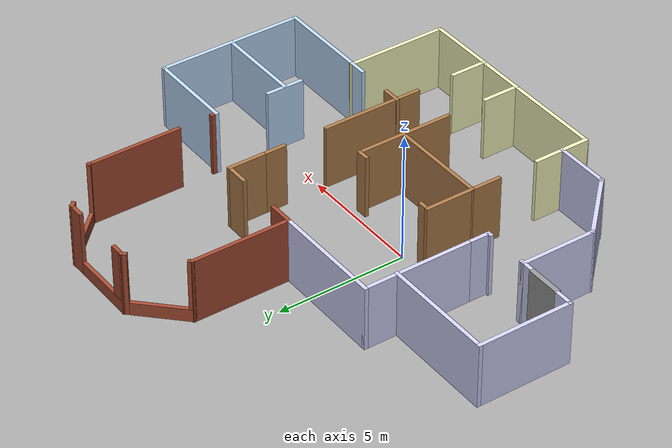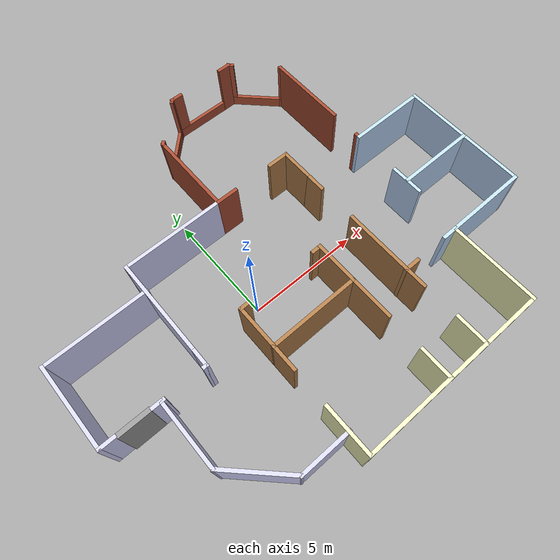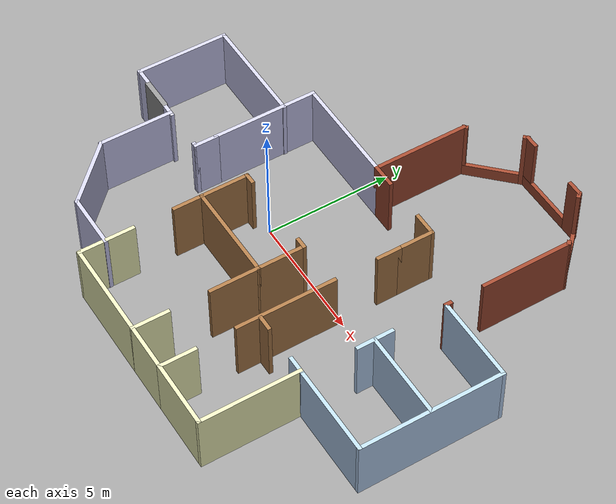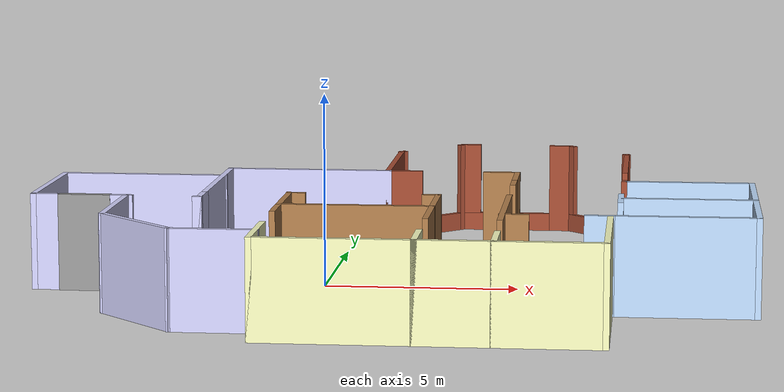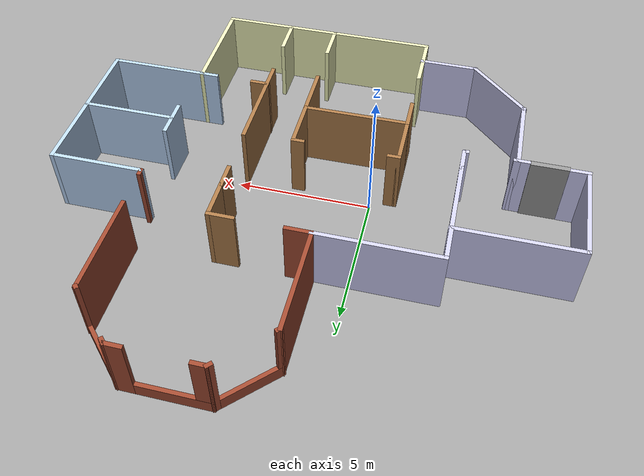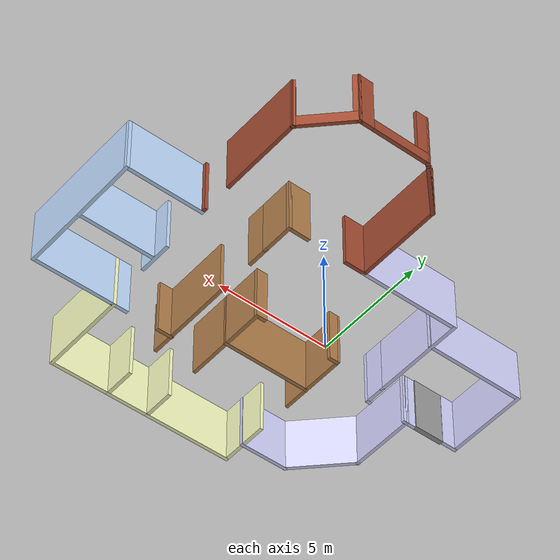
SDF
<?xml version='1.0'?>
<sdf version='1.6'>
  <model name='largehouse'>
    <pose frame=''>1.81017 1.07126 0 0 -0 0</pose>
    <link name='Door_1'>
      <collision name='Door_1_Collision'>
        <geometry>
          <box>
            <size>1.364 0.2 2.5</size>
          </box>
        </geometry>
        <pose frame=''>0 0 1.25 0 -0 0</pose>
      </collision>
      <visual name='Door_1_Visual'>
        <pose frame=''>0 0 1.25 0 -0 0</pose>
        <geometry>
          <box>
            <size>1.364 0.2 2.5</size>
          </box>
        </geometry>
        <material>
          <script>
            <uri>file://media/materials/scripts/gazebo.material</uri>
            <name>Gazebo/Grey</name>
          </script>
        </material>
      </visual>
      <pose frame=''>-7.8761 -2.2287 0 0 -0 0</pose>
    </link>
    <link name='Wall_0'>
      <collision name='Wall_0_Collision'>
        <geometry>
          <box>
            <size>4.00005 0.15 2.5</size>
          </box>
        </geometry>
        <pose frame=''>0 0 1.25 0 -0 0</pose>
      </collision>
      <visual name='Wall_0_Visual'>
        <pose frame=''>0 0 1.25 0 -0 0</pose>
        <geometry>
          <box>
            <size>4.00005 0.15 2.5</size>
          </box>
        </geometry>
        <material>
          <script>
            <uri>file://media/materials/scripts/gazebo.material</uri>
            <name>Gazebo/Wood</name>
          </script>
          <ambient>1 1 1 1</ambient>
        </material>
        <meta>
          <layer>0</layer>
        </meta>
      </visual>
      <pose frame=''>-0.765166 -3.26121 0 0 -0 0.005224</pose>
    </link>
    <link name='Wall_1'>
      <collision name='Wall_1_Collision'>
        <geometry>
          <box>
            <size>1.97989 0.15 2.5</size>
          </box>
        </geometry>
        <pose frame=''>0 0 1.25 0 -0 0</pose>
      </collision>
      <visual name='Wall_1_Visual'>
        <pose frame=''>0 0 1.25 0 -0 0</pose>
        <geometry>
          <box>
            <size>1.97989 0.15 2.5</size>
          </box>
        </geometry>
        <material>
          <script>
            <uri>file://media/materials/scripts/gazebo.material</uri>
            <name>Gazebo/Wood</name>
          </script>
          <ambient>1 1 1 1</ambient>
        </material>
        <meta>
          <layer>0</layer>
        </meta>
      </visual>
      <pose frame=''>1.15983 -2.33621 0 0 -0 1.5708</pose>
    </link>
    <link name='Wall_102'>
      <pose frame=''>0.267282 7.25959 0 0 0 -2.35619</pose>
      <visual name='Wall_102_Visual_0'>
        <pose frame=''>-1.11851 0 1.25 0 -0 0</pose>
        <geometry>
          <box>
            <size>0.262969 0.15 2.5</size>
          </box>
        </geometry>
        <material>
          <script>
            <uri>file://media/materials/scripts/gazebo.material</uri>
            <name>Gazebo/Bricks</name>
          </script>
          <ambient>1 1 1 1</ambient>
        </material>
        <meta>
          <layer>0</layer>
        </meta>
      </visual>
      <collision name='Wall_102_Collision_0'>
        <geometry>
          <box>
            <size>0.262969 0.15 2.5</size>
          </box>
        </geometry>
        <pose frame=''>-1.11851 0 1.25 0 -0 0</pose>
      </collision>
      <visual name='Wall_102_Visual_1'>
        <pose frame=''>0.131485 0 0.25 0 -0 0</pose>
        <geometry>
          <box>
            <size>2.23703 0.15 0.5</size>
          </box>
        </geometry>
        <material>
          <script>
            <uri>file://media/materials/scripts/gazebo.material</uri>
            <name>Gazebo/Bricks</name>
          </script>
          <ambient>1 1 1 1</ambient>
        </material>
        <meta>
          <layer>0</layer>
        </meta>
      </visual>
      <collision name='Wall_102_Collision_1'>
        <geometry>
          <box>
            <size>2.23703 0.15 0.5</size>
          </box>
        </geometry>
        <pose frame=''>0.131485 0 0.25 0 -0 0</pose>
      </collision>
      <visual name='Wall_102_Visual_2'>
        <pose frame=''>1.13149 0 1.5 0 -0 0</pose>
        <geometry>
          <box>
            <size>0.237031 0.15 2</size>
          </box>
        </geometry>
        <material>
          <script>
            <uri>file://media/materials/scripts/gazebo.material</uri>
            <name>Gazebo/Bricks</name>
          </script>
          <ambient>1 1 1 1</ambient>
        </material>
        <meta>
          <layer>0</layer>
        </meta>
      </visual>
      <collision name='Wall_102_Collision_2'>
        <geometry>
          <box>
            <size>0.237031 0.15 2</size>
          </box>
        </geometry>
        <pose frame=''>1.13149 0 1.5 0 -0 0</pose>
      </collision>
    </link>
    <link name='Wall_103'>
      <collision name='Wall_103_Collision'>
        <geometry>
          <box>
            <size>3.75 0.15 2.5</size>
          </box>
        </geometry>
        <pose frame=''>0 0 1.25 0 -0 0</pose>
      </collision>
      <visual name='Wall_103_Visual'>
        <pose frame=''>0 0 1.25 0 -0 0</pose>
        <geometry>
          <box>
            <size>3.75 0.15 2.5</size>
          </box>
        </geometry>
        <material>
          <script>
            <uri>file://media/materials/scripts/gazebo.material</uri>
            <name>Gazebo/Bricks</name>
          </script>
          <ambient>1 1 1 1</ambient>
        </material>
        <meta>
          <layer>0</layer>
        </meta>
      </visual>
      <pose frame=''>-0.563568 4.62874 0 0 0 -1.5708</pose>
    </link>
    <link name='Wall_106'>
      <collision name='Wall_106_Collision'>
        <geometry>
          <box>
            <size>4.5 0.15 2.5</size>
          </box>
        </geometry>
        <pose frame=''>0 0 1.25 0 -0 0</pose>
      </collision>
      <visual name='Wall_106_Visual'>
        <pose frame=''>0 0 1.25 0 -0 0</pose>
        <geometry>
          <box>
            <size>4.5 0.15 2.5</size>
          </box>
        </geometry>
        <material>
          <script>
            <uri>file://media/materials/scripts/gazebo.material</uri>
            <name>Gazebo/Grey</name>
          </script>
          <ambient>0.835294 0.835294 1 1</ambient>
        </material>
        <meta>
          <layer>0</layer>
        </meta>
      </visual>
      <pose frame=''>-2.71517 2.67874 0 0 -0 0</pose>
    </link>
    <link name='Wall_107'>
      <collision name='Wall_107_Collision'>
        <geometry>
          <box>
            <size>1 0.15 2.5</size>
          </box>
        </geometry>
        <pose frame=''>0 0 1.25 0 -0 0</pose>
      </collision>
      <visual name='Wall_107_Visual'>
        <pose frame=''>0 0 1.25 0 -0 0</pose>
        <geometry>
          <box>
            <size>1 0.15 2.5</size>
          </box>
        </geometry>
        <material>
          <script>
            <uri>file://media/materials/scripts/gazebo.material</uri>
            <name>Gazebo/Bricks</name>
          </script>
          <ambient>0.670588 0.678431 1 1</ambient>
        </material>
        <meta>
          <layer>0</layer>
        </meta>
      </visual>
      <pose frame=''>-0.115166 2.67874 0 0 -0 0</pose>
    </link>
    <link name='Wall_109'>
      <collision name='Wall_109_Collision'>
        <geometry>
          <box>
            <size>1 0.15 2.5</size>
          </box>
        </geometry>
        <pose frame=''>0 0 1.25 0 -0 0</pose>
      </collision>
      <visual name='Wall_109_Visual'>
        <pose frame=''>0 0 1.25 0 -0 0</pose>
        <geometry>
          <box>
            <size>1 0.15 2.5</size>
          </box>
        </geometry>
        <material>
          <script>
            <uri>file://media/materials/scripts/gazebo.material</uri>
            <name>Gazebo/Wood</name>
          </script>
          <ambient>1 1 1 1</ambient>
        </material>
        <meta>
          <layer>0</layer>
        </meta>
      </visual>
      <pose frame=''>2.53483 2.67874 0 0 -0 3.14159</pose>
    </link>
    <link name='Wall_15'>
      <collision name='Wall_15_Collision'>
        <geometry>
          <box>
            <size>2 0.15 2.5</size>
          </box>
        </geometry>
        <pose frame=''>0 0 1.25 0 -0 0</pose>
      </collision>
      <visual name='Wall_15_Visual'>
        <pose frame=''>0 0 1.25 0 -0 0</pose>
        <geometry>
          <box>
            <size>2 0.15 2.5</size>
          </box>
        </geometry>
        <material>
          <script>
            <uri>file://media/materials/scripts/gazebo.material</uri>
            <name>Gazebo/Wood</name>
          </script>
          <ambient>1 1 1 1</ambient>
        </material>
        <meta>
          <layer>0</layer>
        </meta>
      </visual>
      <pose frame=''>1.15983 -4.19626 0 0 0 -1.5708</pose>
    </link>
    <link name='Wall_18'>
      <collision name='Wall_18_Collision'>
        <geometry>
          <box>
            <size>4 0.15 2.5</size>
          </box>
        </geometry>
        <pose frame=''>0 0 1.25 0 -0 0</pose>
      </collision>
      <visual name='Wall_18_Visual'>
        <pose frame=''>0 0 1.25 0 -0 0</pose>
        <geometry>
          <box>
            <size>4 0.15 2.5</size>
          </box>
        </geometry>
        <material>
          <script>
            <uri>file://media/materials/scripts/gazebo.material</uri>
            <name>Gazebo/Grey</name>
          </script>
          <ambient>0.988235 1 0.760784 1</ambient>
        </material>
        <meta>
          <layer>0</layer>
        </meta>
      </visual>
      <pose frame=''>-0.765166 -8.12126 0 0 -0 0</pose>
    </link>
    <link name='Wall_19'>
      <collision name='Wall_19_Collision'>
        <geometry>
          <box>
            <size>1.5 0.15 2.5</size>
          </box>
        </geometry>
        <pose frame=''>0 0 1.25 0 -0 0</pose>
      </collision>
      <visual name='Wall_19_Visual'>
        <pose frame=''>0 0 1.25 0 -0 0</pose>
        <geometry>
          <box>
            <size>1.5 0.15 2.5</size>
          </box>
        </geometry>
        <material>
          <script>
            <uri>file://media/materials/scripts/gazebo.material</uri>
            <name>Gazebo/Grey</name>
          </script>
          <ambient>0.988235 1 0.760784 1</ambient>
        </material>
        <meta>
          <layer>0</layer>
        </meta>
      </visual>
      <pose frame=''>1.15983 -7.44626 0 0 -0 1.5708</pose>
    </link>
    <link name='Wall_2'>
      <collision name='Wall_2_Collision'>
        <geometry>
          <box>
            <size>0.5 0.15 2.5</size>
          </box>
        </geometry>
        <pose frame=''>0 0 1.25 0 -0 0</pose>
      </collision>
      <visual name='Wall_2_Visual'>
        <pose frame=''>0 0 1.25 0 -0 0</pose>
        <geometry>
          <box>
            <size>0.5 0.15 2.5</size>
          </box>
        </geometry>
        <material>
          <script>
            <uri>file://media/materials/scripts/gazebo.material</uri>
            <name>Gazebo/Wood</name>
          </script>
          <ambient>1 1 1 1</ambient>
        </material>
        <meta>
          <layer>0</layer>
        </meta>
      </visual>
      <pose frame=''>0.984834 -1.42126 0 0 -0 3.14159</pose>
    </link>
    <link name='Wall_21'>
      <collision name='Wall_21_Collision'>
        <geometry>
          <box>
            <size>2 0.15 2.5</size>
          </box>
        </geometry>
        <pose frame=''>0 0 1.25 0 -0 0</pose>
      </collision>
      <visual name='Wall_21_Visual'>
        <pose frame=''>0 0 1.25 0 -0 0</pose>
        <geometry>
          <box>
            <size>2 0.15 2.5</size>
          </box>
        </geometry>
        <material>
          <script>
            <uri>file://media/materials/scripts/gazebo.material</uri>
            <name>Gazebo/Grey</name>
          </script>
          <ambient>0.988235 1 0.760784 1</ambient>
        </material>
        <meta>
          <layer>0</layer>
        </meta>
      </visual>
      <pose frame=''>2.08483 -8.12126 0 0 -0 0</pose>
    </link>
    <link name='Wall_22'>
      <collision name='Wall_22_Collision'>
        <geometry>
          <box>
            <size>1.5 0.15 2.5</size>
          </box>
        </geometry>
        <pose frame=''>0 0 1.25 0 -0 0</pose>
      </collision>
      <visual name='Wall_22_Visual'>
        <pose frame=''>0 0 1.25 0 -0 0</pose>
        <geometry>
          <box>
            <size>1.5 0.15 2.5</size>
          </box>
        </geometry>
        <material>
          <script>
            <uri>file://media/materials/scripts/gazebo.material</uri>
            <name>Gazebo/Grey</name>
          </script>
          <ambient>0.988235 1 0.760784 1</ambient>
        </material>
        <meta>
          <layer>0</layer>
        </meta>
      </visual>
      <pose frame=''>3.00983 -7.44626 0 0 -0 1.5708</pose>
    </link>
    <link name='Wall_24'>
      <collision name='Wall_24_Collision'>
        <geometry>
          <box>
            <size>4 0.15 2.5</size>
          </box>
        </geometry>
        <pose frame=''>0 0 1.25 0 -0 0</pose>
      </collision>
      <visual name='Wall_24_Visual'>
        <pose frame=''>0 0 1.25 0 -0 0</pose>
        <geometry>
          <box>
            <size>4 0.15 2.5</size>
          </box>
        </geometry>
        <material>
          <script>
            <uri>file://media/materials/scripts/gazebo.material</uri>
            <name>Gazebo/Wood</name>
          </script>
          <ambient>1 1 1 1</ambient>
        </material>
        <meta>
          <layer>0</layer>
        </meta>
      </visual>
      <pose frame=''>2.96886 -3.22346 0 0 -0 1.5708</pose>
    </link>
    <link name='Wall_27'>
      <collision name='Wall_27_Collision'>
        <geometry>
          <box>
            <size>2.75 0.15 2.5</size>
          </box>
        </geometry>
        <pose frame=''>0 0 1.25 0 -0 0</pose>
      </collision>
      <visual name='Wall_27_Visual'>
        <pose frame=''>0 0 1.25 0 -0 0</pose>
        <geometry>
          <box>
            <size>2.75 0.15 2.5</size>
          </box>
        </geometry>
        <material>
          <script>
            <uri>file://media/materials/scripts/gazebo.material</uri>
            <name>Gazebo/Grey</name>
          </script>
          <ambient>0.988235 1 0.760784 1</ambient>
        </material>
        <meta>
          <layer>0</layer>
        </meta>
      </visual>
      <pose frame=''>4.30983 -8.12126 0 0 -0 0</pose>
    </link>
    <link name='Wall_28'>
      <collision name='Wall_28_Collision'>
        <geometry>
          <box>
            <size>4.00048 0.15 2.5</size>
          </box>
        </geometry>
        <pose frame=''>0 0 1.25 0 -0 0</pose>
      </collision>
      <visual name='Wall_28_Visual'>
        <pose frame=''>0 0 1.25 0 -0 0</pose>
        <geometry>
          <box>
            <size>4.00048 0.15 2.5</size>
          </box>
        </geometry>
        <material>
          <script>
            <uri>file://media/materials/scripts/gazebo.material</uri>
            <name>Gazebo/Grey</name>
          </script>
          <ambient>0.988235 1 0.760784 1</ambient>
        </material>
        <meta>
          <layer>0</layer>
        </meta>
      </visual>
      <pose frame=''>5.60983 -6.19626 0 0 -0 1.5708</pose>
    </link>
    <link name='Wall_35'>
      <collision name='Wall_35_Collision'>
        <geometry>
          <box>
            <size>0.75 0.15 2.5</size>
          </box>
        </geometry>
        <pose frame=''>0 0 1.25 0 -0 0</pose>
      </collision>
      <visual name='Wall_35_Visual'>
        <pose frame=''>0 0 1.25 0 -0 0</pose>
        <geometry>
          <box>
            <size>0.75 0.15 2.5</size>
          </box>
        </geometry>
        <material>
          <script>
            <uri>file://media/materials/scripts/gazebo.material</uri>
            <name>Gazebo/Grey</name>
          </script>
          <ambient>0.752941 0.866667 1 1</ambient>
        </material>
        <meta>
          <layer>0</layer>
        </meta>
      </visual>
      <pose frame=''>5.34025 -4.27126 0 0 -0 3.14159</pose>
    </link>
    <link name='Wall_37'>
      <collision name='Wall_37_Collision'>
        <geometry>
          <box>
            <size>0.75 0.15 2.5</size>
          </box>
        </geometry>
        <pose frame=''>0 0 1.25 0 -0 0</pose>
      </collision>
      <visual name='Wall_37_Visual'>
        <pose frame=''>0 0 1.25 0 -0 0</pose>
        <geometry>
          <box>
            <size>0.75 0.15 2.5</size>
          </box>
        </geometry>
        <material>
          <script>
            <uri>file://media/materials/scripts/gazebo.material</uri>
            <name>Gazebo/Wood</name>
          </script>
          <ambient>1 1 1 1</ambient>
        </material>
        <meta>
          <layer>0</layer>
        </meta>
      </visual>
      <pose frame=''>3.25047 -4.26025 0 0 -0 0</pose>
    </link>
    <link name='Wall_39'>
      <collision name='Wall_39_Collision'>
        <geometry>
          <box>
            <size>3.75 0.15 2.5</size>
          </box>
        </geometry>
        <pose frame=''>0 0 1.25 0 -0 0</pose>
      </collision>
      <visual name='Wall_39_Visual'>
        <pose frame=''>0 0 1.25 0 -0 0</pose>
        <geometry>
          <box>
            <size>3.75 0.15 2.5</size>
          </box>
        </geometry>
        <material>
          <script>
            <uri>file://media/materials/scripts/gazebo.material</uri>
            <name>Gazebo/Grey</name>
          </script>
          <ambient>0.752941 0.866667 1 1</ambient>
        </material>
        <meta>
          <layer>0</layer>
        </meta>
      </visual>
      <pose frame=''>7.40983 -4.27126 0 0 -0 0</pose>
    </link>
    <link name='Wall_40'>
      <collision name='Wall_40_Collision'>
        <geometry>
          <box>
            <size>5.75025 0.15 2.5</size>
          </box>
        </geometry>
        <pose frame=''>0 0 1.25 0 -0 0</pose>
      </collision>
      <visual name='Wall_40_Visual'>
        <pose frame=''>0 0 1.25 0 -0 0</pose>
        <geometry>
          <box>
            <size>5.75025 0.15 2.5</size>
          </box>
        </geometry>
        <material>
          <script>
            <uri>file://media/materials/scripts/gazebo.material</uri>
            <name>Gazebo/Grey</name>
          </script>
          <ambient>0.752941 0.866667 1 1</ambient>
        </material>
        <meta>
          <layer>0</layer>
        </meta>
      </visual>
      <pose frame=''>9.20983 -1.47126 0 0 -0 1.5708</pose>
    </link>
    <link name='Wall_5'>
      <collision name='Wall_5_Collision'>
        <geometry>
          <box>
            <size>2 0.15 2.5</size>
          </box>
        </geometry>
        <pose frame=''>0 0 1.25 0 -0 0</pose>
      </collision>
      <visual name='Wall_5_Visual'>
        <pose frame=''>0 0 1.25 0 -0 0</pose>
        <geometry>
          <box>
            <size>2 0.15 2.5</size>
          </box>
        </geometry>
        <material>
          <script>
            <uri>file://media/materials/scripts/gazebo.material</uri>
            <name>Gazebo/Wood</name>
          </script>
          <ambient>1 1 1 1</ambient>
        </material>
        <meta>
          <layer>0</layer>
        </meta>
      </visual>
      <pose frame=''>-2.69017 -2.34626 0 0 -0 1.5708</pose>
    </link>
    <link name='Wall_50'>
      <collision name='Wall_50_Collision'>
        <geometry>
          <box>
            <size>1 0.15 2.5</size>
          </box>
        </geometry>
        <pose frame=''>0 0 1.25 0 -0 0</pose>
      </collision>
      <visual name='Wall_50_Visual'>
        <pose frame=''>0 0 1.25 0 -0 0</pose>
        <geometry>
          <box>
            <size>1 0.15 2.5</size>
          </box>
        </geometry>
        <material>
          <script>
            <uri>file://media/materials/scripts/gazebo.material</uri>
            <name>Gazebo/Wood</name>
          </script>
          <ambient>1 1 1 1</ambient>
        </material>
        <meta>
          <layer>0</layer>
        </meta>
      </visual>
      <pose frame=''>2.95983 0.903737 0 0 0 -1.5708</pose>
    </link>
    <link name='Wall_52'>
      <collision name='Wall_52_Collision'>
        <geometry>
          <box>
            <size>3.5 0.15 2.5</size>
          </box>
        </geometry>
        <pose frame=''>0 0 1.25 0 -0 0</pose>
      </collision>
      <visual name='Wall_52_Visual'>
        <pose frame=''>0 0 1.25 0 -0 0</pose>
        <geometry>
          <box>
            <size>3.5 0.15 2.5</size>
          </box>
        </geometry>
        <material>
          <script>
            <uri>file://media/materials/scripts/gazebo.material</uri>
            <name>Gazebo/Grey</name>
          </script>
          <ambient>0.752941 0.866667 1 1</ambient>
        </material>
        <meta>
          <layer>0</layer>
        </meta>
      </visual>
      <pose frame=''>7.52318 -1.51345 0 0 -0 3.14159</pose>
    </link>
    <link name='Wall_54'>
      <collision name='Wall_54_Collision'>
        <geometry>
          <box>
            <size>1.5 0.15 2.5</size>
          </box>
        </geometry>
        <pose frame=''>0 0 1.25 0 -0 0</pose>
      </collision>
      <visual name='Wall_54_Visual'>
        <pose frame=''>0 0 1.25 0 -0 0</pose>
        <geometry>
          <box>
            <size>1.5 0.15 2.5</size>
          </box>
        </geometry>
        <material>
          <script>
            <uri>file://media/materials/scripts/gazebo.material</uri>
            <name>Gazebo/Wood</name>
          </script>
          <ambient>1 1 1 1</ambient>
        </material>
        <meta>
          <layer>0</layer>
        </meta>
      </visual>
      <pose frame=''>2.95983 2.00374 0 0 -0 1.5708</pose>
    </link>
    <link name='Wall_56'>
      <collision name='Wall_56_Collision'>
        <geometry>
          <box>
            <size>4.25 0.15 2.5</size>
          </box>
        </geometry>
        <pose frame=''>0 0 1.25 0 -0 0</pose>
      </collision>
      <visual name='Wall_56_Visual'>
        <pose frame=''>0 0 1.25 0 -0 0</pose>
        <geometry>
          <box>
            <size>4.25 0.15 2.5</size>
          </box>
        </geometry>
        <material>
          <script>
            <uri>file://media/materials/scripts/gazebo.material</uri>
            <name>Gazebo/Grey</name>
          </script>
          <ambient>0.835294 0.835294 1 1</ambient>
        </material>
        <meta>
          <layer>0</layer>
        </meta>
      </visual>
      <pose frame=''>-4.89017 0.628737 0 0 0 -1.5708</pose>
    </link>
    <link name='Wall_6'>
      <collision name='Wall_6_Collision'>
        <geometry>
          <box>
            <size>0.5 0.15 2.5</size>
          </box>
        </geometry>
        <pose frame=''>0 0 1.25 0 -0 0</pose>
      </collision>
      <visual name='Wall_6_Visual'>
        <pose frame=''>0 0 1.25 0 -0 0</pose>
        <geometry>
          <box>
            <size>0.5 0.15 2.5</size>
          </box>
        </geometry>
        <material>
          <script>
            <uri>file://media/materials/scripts/gazebo.material</uri>
            <name>Gazebo/Wood</name>
          </script>
          <ambient>1 1 1 1</ambient>
        </material>
        <meta>
          <layer>0</layer>
        </meta>
      </visual>
      <pose frame=''>-2.51517 -1.42126 0 0 -0 0</pose>
    </link>
    <link name='Wall_61'>
      <collision name='Wall_61_Collision'>
        <geometry>
          <box>
            <size>1 0.15 2.5</size>
          </box>
        </geometry>
        <pose frame=''>0 0 1.25 0 -0 0</pose>
      </collision>
      <visual name='Wall_61_Visual'>
        <pose frame=''>0 0 1.25 0 -0 0</pose>
        <geometry>
          <box>
            <size>1 0.15 2.5</size>
          </box>
        </geometry>
        <material>
          <script>
            <uri>file://media/materials/scripts/gazebo.material</uri>
            <name>Gazebo/Grey</name>
          </script>
          <ambient>0.835294 0.835294 1 1</ambient>
        </material>
        <meta>
          <layer>0</layer>
        </meta>
      </visual>
      <pose frame=''>-4.89017 -1.84626 0 0 0 -1.5708</pose>
    </link>
    <link name='Wall_68'>
      <collision name='Wall_68_Collision'>
        <geometry>
          <box>
            <size>2.25 0.15 2.5</size>
          </box>
        </geometry>
        <pose frame=''>0 0 1.25 0 -0 0</pose>
      </collision>
      <visual name='Wall_68_Visual'>
        <pose frame=''>0 0 1.25 0 -0 0</pose>
        <geometry>
          <box>
            <size>2.25 0.15 2.5</size>
          </box>
        </geometry>
        <material>
          <script>
            <uri>file://media/materials/scripts/gazebo.material</uri>
            <name>Gazebo/Grey</name>
          </script>
          <ambient>0.835294 0.835294 1 1</ambient>
        </material>
        <meta>
          <layer>0</layer>
        </meta>
      </visual>
      <pose frame=''>-3.72078 -7.11434 0 0 -0 3.14159</pose>
    </link>
    <link name='Wall_69'>
      <collision name='Wall_69_Collision'>
        <geometry>
          <box>
            <size>3 0.15 2.5</size>
          </box>
        </geometry>
        <pose frame=''>0 0 1.25 0 -0 0</pose>
      </collision>
      <visual name='Wall_69_Visual'>
        <pose frame=''>0 0 1.25 0 -0 0</pose>
        <geometry>
          <box>
            <size>3 0.15 2.5</size>
          </box>
        </geometry>
        <material>
          <script>
            <uri>file://media/materials/scripts/gazebo.material</uri>
            <name>Gazebo/Grey</name>
          </script>
          <ambient>0.835294 0.835294 1 1</ambient>
        </material>
        <meta>
          <layer>0</layer>
        </meta>
      </visual>
      <pose frame=''>-5.77841 -6.10671 0 0 -0 2.35619</pose>
    </link>
    <link name='Wall_70'>
      <collision name='Wall_70_Collision'>
        <geometry>
          <box>
            <size>3 0.15 2.5</size>
          </box>
        </geometry>
        <pose frame=''>0 0 1.25 0 -0 0</pose>
      </collision>
      <visual name='Wall_70_Visual'>
        <pose frame=''>0 0 1.25 0 -0 0</pose>
        <geometry>
          <box>
            <size>3 0.15 2.5</size>
          </box>
        </geometry>
        <material>
          <script>
            <uri>file://media/materials/scripts/gazebo.material</uri>
            <name>Gazebo/Grey</name>
          </script>
          <ambient>0.835294 0.835294 1 1</ambient>
        </material>
        <meta>
          <layer>0</layer>
        </meta>
      </visual>
      <pose frame=''>-6.78603 -3.67408 0 0 -0 1.5708</pose>
    </link>
    <link name='Wall_72'>
      <collision name='Wall_72_Collision'>
        <geometry>
          <box>
            <size>0.25 0.15 2.5</size>
          </box>
        </geometry>
        <pose frame=''>0 0 1.25 0 -0 0</pose>
      </collision>
      <visual name='Wall_72_Visual'>
        <pose frame=''>0 0 1.25 0 -0 0</pose>
        <geometry>
          <box>
            <size>0.25 0.15 2.5</size>
          </box>
        </geometry>
        <material>
          <script>
            <uri>file://media/materials/scripts/gazebo.material</uri>
            <name>Gazebo/Grey</name>
          </script>
          <ambient>0.835294 0.835294 1 1</ambient>
        </material>
        <meta>
          <layer>0</layer>
        </meta>
      </visual>
      <pose frame=''>-4.94017 -2.27126 0 0 -0 3.14159</pose>
    </link>
    <link name='Wall_74'>
      <collision name='Wall_74_Collision'>
        <geometry>
          <box>
            <size>0.25 0.15 2.5</size>
          </box>
        </geometry>
        <pose frame=''>0 0 1.25 0 -0 0</pose>
      </collision>
      <visual name='Wall_74_Visual'>
        <pose frame=''>0 0 1.25 0 -0 0</pose>
        <geometry>
          <box>
            <size>0.25 0.15 2.5</size>
          </box>
        </geometry>
        <material>
          <script>
            <uri>file://media/materials/scripts/gazebo.material</uri>
            <name>Gazebo/Grey</name>
          </script>
          <ambient>0.835294 0.835294 1 1</ambient>
        </material>
        <meta>
          <layer>0</layer>
        </meta>
      </visual>
      <pose frame=''>-6.73603 -2.24908 0 0 -0 0</pose>
    </link>
    <link name='Wall_76'>
      <collision name='Wall_76_Collision'>
        <geometry>
          <box>
            <size>4.5 0.15 2.5</size>
          </box>
        </geometry>
        <pose frame=''>0 0 1.25 0 -0 0</pose>
      </collision>
      <visual name='Wall_76_Visual'>
        <pose frame=''>0 0 1.25 0 -0 0</pose>
        <geometry>
          <box>
            <size>4.5 0.15 2.5</size>
          </box>
        </geometry>
        <material>
          <script>
            <uri>file://media/materials/scripts/gazebo.material</uri>
            <name>Gazebo/Grey</name>
          </script>
          <ambient>0.835294 0.835294 1 1</ambient>
        </material>
        <meta>
          <layer>0</layer>
        </meta>
      </visual>
      <pose frame=''>-7.03484 1.40368 0 0 -0 3.14159</pose>
    </link>
    <link name='Wall_77'>
      <collision name='Wall_77_Collision'>
        <geometry>
          <box>
            <size>3.75 0.15 2.5</size>
          </box>
        </geometry>
        <pose frame=''>0 0 1.25 0 -0 0</pose>
      </collision>
      <visual name='Wall_77_Visual'>
        <pose frame=''>0 0 1.25 0 -0 0</pose>
        <geometry>
          <box>
            <size>3.75 0.15 2.5</size>
          </box>
        </geometry>
        <material>
          <script>
            <uri>file://media/materials/scripts/gazebo.material</uri>
            <name>Gazebo/Grey</name>
          </script>
          <ambient>0.835294 0.835294 1 1</ambient>
        </material>
        <meta>
          <layer>0</layer>
        </meta>
      </visual>
      <pose frame=''>-9.20983 -0.396325 0 0 0 -1.5708</pose>
    </link>
    <link name='Wall_78'>
      <collision name='Wall_78_Collision'>
        <geometry>
          <box>
            <size>0.75 0.15 2.5</size>
          </box>
        </geometry>
        <pose frame=''>0 0 1.25 0 -0 0</pose>
      </collision>
      <visual name='Wall_78_Visual'>
        <pose frame=''>0 0 1.25 0 -0 0</pose>
        <geometry>
          <box>
            <size>0.75 0.15 2.5</size>
          </box>
        </geometry>
        <material>
          <script>
            <uri>file://media/materials/scripts/gazebo.material</uri>
            <name>Gazebo/Grey</name>
          </script>
          <ambient>0.835294 0.835294 1 1</ambient>
        </material>
        <meta>
          <layer>0</layer>
        </meta>
      </visual>
      <pose frame=''>-8.90983 -2.19632 0 0 -0 0</pose>
    </link>
    <link name='Wall_80'>
      <collision name='Wall_80_Collision'>
        <geometry>
          <box>
            <size>0.5 0.15 2.5</size>
          </box>
        </geometry>
        <pose frame=''>0 0 1.25 0 -0 0</pose>
      </collision>
      <visual name='Wall_80_Visual'>
        <pose frame=''>0 0 1.25 0 -0 0</pose>
        <geometry>
          <box>
            <size>0.5 0.15 2.5</size>
          </box>
        </geometry>
        <material>
          <script>
            <uri>file://media/materials/scripts/gazebo.material</uri>
            <name>Gazebo/Grey</name>
          </script>
          <ambient>0.835294 0.835294 1 1</ambient>
        </material>
        <meta>
          <layer>0</layer>
        </meta>
      </visual>
      <pose frame=''>-6.96103 -2.24908 0 0 -0 3.14159</pose>
    </link>
    <link name='Wall_82'>
      <collision name='Wall_82_Collision'>
        <geometry>
          <box>
            <size>1.5 0.15 2.5</size>
          </box>
        </geometry>
        <pose frame=''>0 0 1.25 0 -0 0</pose>
      </collision>
      <visual name='Wall_82_Visual'>
        <pose frame=''>0 0 1.25 0 -0 0</pose>
        <geometry>
          <box>
            <size>1.5 0.15 2.5</size>
          </box>
        </geometry>
        <material>
          <script>
            <uri>file://media/materials/scripts/gazebo.material</uri>
            <name>Gazebo/Grey</name>
          </script>
          <ambient>0.752941 0.866667 1 1</ambient>
        </material>
        <meta>
          <layer>0</layer>
        </meta>
      </visual>
      <pose frame=''>5.81671 -1.4918 0 0 0 -1.5708</pose>
    </link>
    <link name='Wall_84'>
      <collision name='Wall_84_Collision'>
        <geometry>
          <box>
            <size>1.25 0.15 2.5</size>
          </box>
        </geometry>
        <pose frame=''>0 0 1.25 0 -0 0</pose>
      </collision>
      <visual name='Wall_84_Visual'>
        <pose frame=''>0 0 1.25 0 -0 0</pose>
        <geometry>
          <box>
            <size>1.25 0.15 2.5</size>
          </box>
        </geometry>
        <material>
          <script>
            <uri>file://media/materials/scripts/gazebo.material</uri>
            <name>Gazebo/Wood</name>
          </script>
          <ambient>1 1 1 1</ambient>
        </material>
        <meta>
          <layer>0</layer>
        </meta>
      </visual>
      <pose frame=''>-2.69017 -3.82126 0 0 0 -1.5708</pose>
    </link>
    <link name='Wall_86'>
      <collision name='Wall_86_Collision'>
        <geometry>
          <box>
            <size>2.25 0.15 2.5</size>
          </box>
        </geometry>
        <pose frame=''>0 0 1.25 0 -0 0</pose>
      </collision>
      <visual name='Wall_86_Visual'>
        <pose frame=''>0 0 1.25 0 -0 0</pose>
        <geometry>
          <box>
            <size>2.25 0.15 2.5</size>
          </box>
        </geometry>
        <material>
          <script>
            <uri>file://media/materials/scripts/gazebo.material</uri>
            <name>Gazebo/Grey</name>
          </script>
          <ambient>0.988235 1 0.760784 1</ambient>
        </material>
        <meta>
          <layer>0</layer>
        </meta>
      </visual>
      <pose frame=''>-2.69017 -7.07126 0 0 -0 1.5708</pose>
    </link>
    <link name='Wall_88'>
      <collision name='Wall_88_Collision'>
        <geometry>
          <box>
            <size>3.5 0.15 2.5</size>
          </box>
        </geometry>
        <pose frame=''>0 0 1.25 0 -0 0</pose>
      </collision>
      <visual name='Wall_88_Visual'>
        <pose frame=''>0 0 1.25 0 -0 0</pose>
        <geometry>
          <box>
            <size>3.5 0.15 2.5</size>
          </box>
        </geometry>
        <material>
          <script>
            <uri>file://media/materials/scripts/gazebo.material</uri>
            <name>Gazebo/Grey</name>
          </script>
          <ambient>0.752941 0.866667 1 1</ambient>
        </material>
        <meta>
          <layer>0</layer>
        </meta>
      </visual>
      <pose frame=''>7.53483 1.32874 0 0 -0 3.14159</pose>
    </link>
    <link name='Wall_90'>
      <pose frame=''>5.85983 3.87874 0 0 -0 1.5708</pose>
      <visual name='Wall_90_Visual_0'>
        <pose frame=''>-2.46761 0 1.25 0 -0 0</pose>
        <geometry>
          <box>
            <size>0.314771 0.15 2.5</size>
          </box>
        </geometry>
        <material>
          <script>
            <uri>file://media/materials/scripts/gazebo.material</uri>
            <name>Gazebo/Bricks</name>
          </script>
          <ambient>1 1 1 1</ambient>
        </material>
        <meta>
          <layer>0</layer>
        </meta>
      </visual>
      <collision name='Wall_90_Collision_0'>
        <geometry>
          <box>
            <size>0.314771 0.15 2.5</size>
          </box>
        </geometry>
        <pose frame=''>-2.46761 0 1.25 0 -0 0</pose>
      </collision>
      <visual name='Wall_90_Visual_1'>
        <pose frame=''>0.779386 0 1.25 0 -0 0</pose>
        <geometry>
          <box>
            <size>3.69123 0.15 2.5</size>
          </box>
        </geometry>
        <material>
          <script>
            <uri>file://media/materials/scripts/gazebo.material</uri>
            <name>Gazebo/Bricks</name>
          </script>
          <ambient>1 1 1 1</ambient>
        </material>
        <meta>
          <layer>0</layer>
        </meta>
      </visual>
      <collision name='Wall_90_Collision_1'>
        <geometry>
          <box>
            <size>3.69123 0.15 2.5</size>
          </box>
        </geometry>
        <pose frame=''>0.779386 0 1.25 0 -0 0</pose>
      </collision>
    </link>
    <link name='Wall_93'>
      <pose frame=''>5.02898 7.25959 0 0 -0 2.35619</pose>
      <visual name='Wall_93_Visual_0'>
        <pose frame=''>-1.15324 0 1.25 0 -0 0</pose>
        <geometry>
          <box>
            <size>0.193531 0.15 2.5</size>
          </box>
        </geometry>
        <material>
          <script>
            <uri>file://media/materials/scripts/gazebo.material</uri>
            <name>Gazebo/Bricks</name>
          </script>
          <ambient>1 1 1 1</ambient>
        </material>
        <meta>
          <layer>0</layer>
        </meta>
      </visual>
      <collision name='Wall_93_Collision_0'>
        <geometry>
          <box>
            <size>0.193531 0.15 2.5</size>
          </box>
        </geometry>
        <pose frame=''>-1.15324 0 1.25 0 -0 0</pose>
      </collision>
      <visual name='Wall_93_Visual_1'>
        <pose frame=''>0.096765 0 0.25 0 -0 0</pose>
        <geometry>
          <box>
            <size>2.30647 0.15 0.5</size>
          </box>
        </geometry>
        <material>
          <script>
            <uri>file://media/materials/scripts/gazebo.material</uri>
            <name>Gazebo/Bricks</name>
          </script>
          <ambient>1 1 1 1</ambient>
        </material>
        <meta>
          <layer>0</layer>
        </meta>
      </visual>
      <collision name='Wall_93_Collision_1'>
        <geometry>
          <box>
            <size>2.30647 0.15 0.5</size>
          </box>
        </geometry>
        <pose frame=''>0.096765 0 0.25 0 -0 0</pose>
      </collision>
      <visual name='Wall_93_Visual_2'>
        <pose frame=''>1.09676 0 1.5 0 -0 0</pose>
        <geometry>
          <box>
            <size>0.306469 0.15 2</size>
          </box>
        </geometry>
        <material>
          <script>
            <uri>file://media/materials/scripts/gazebo.material</uri>
            <name>Gazebo/Bricks</name>
          </script>
          <ambient>1 1 1 1</ambient>
        </material>
        <meta>
          <layer>0</layer>
        </meta>
      </visual>
      <collision name='Wall_93_Collision_2'>
        <geometry>
          <box>
            <size>0.306469 0.15 2</size>
          </box>
        </geometry>
        <pose frame=''>1.09676 0 1.5 0 -0 0</pose>
      </collision>
    </link>
    <link name='Wall_94'>
      <pose frame=''>2.64813 8.09044 0 0 -0 3.14159</pose>
      <visual name='Wall_94_Visual_0'>
        <pose frame=''>-1.2905 0 1.25 0 -0 0</pose>
        <geometry>
          <box>
            <size>0.669004 0.15 2.5</size>
          </box>
        </geometry>
        <material>
          <script>
            <uri>file://media/materials/scripts/gazebo.material</uri>
            <name>Gazebo/Bricks</name>
          </script>
          <ambient>1 1 1 1</ambient>
        </material>
        <meta>
          <layer>0</layer>
        </meta>
      </visual>
      <collision name='Wall_94_Collision_0'>
        <geometry>
          <box>
            <size>0.669004 0.15 2.5</size>
          </box>
        </geometry>
        <pose frame=''>-1.2905 0 1.25 0 -0 0</pose>
      </collision>
      <visual name='Wall_94_Visual_1'>
        <pose frame=''>0.334502 0 0.25 0 -0 0</pose>
        <geometry>
          <box>
            <size>2.581 0.15 0.5</size>
          </box>
        </geometry>
        <material>
          <script>
            <uri>file://media/materials/scripts/gazebo.material</uri>
            <name>Gazebo/Bricks</name>
          </script>
          <ambient>1 1 1 1</ambient>
        </material>
        <meta>
          <layer>0</layer>
        </meta>
      </visual>
      <collision name='Wall_94_Collision_1'>
        <geometry>
          <box>
            <size>2.581 0.15 0.5</size>
          </box>
        </geometry>
        <pose frame=''>0.334502 0 0.25 0 -0 0</pose>
      </collision>
      <visual name='Wall_94_Visual_2'>
        <pose frame=''>1.3345 0 1.5 0 -0 0</pose>
        <geometry>
          <box>
            <size>0.580996 0.15 2</size>
          </box>
        </geometry>
        <material>
          <script>
            <uri>file://media/materials/scripts/gazebo.material</uri>
            <name>Gazebo/Bricks</name>
          </script>
          <ambient>1 1 1 1</ambient>
        </material>
        <meta>
          <layer>0</layer>
        </meta>
      </visual>
      <collision name='Wall_94_Collision_2'>
        <geometry>
          <box>
            <size>0.580996 0.15 2</size>
          </box>
        </geometry>
        <pose frame=''>1.3345 0 1.5 0 -0 0</pose>
      </collision>
    </link>
    <static>1</static>
  </model>
</sdf>
